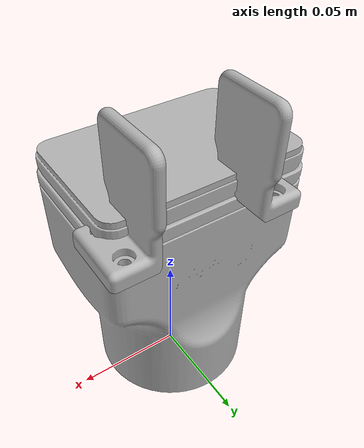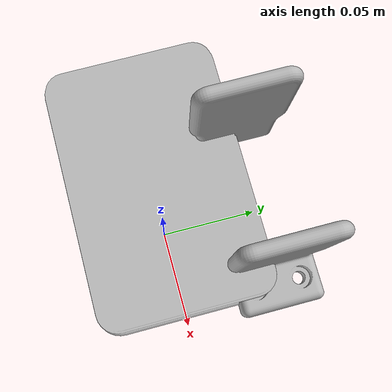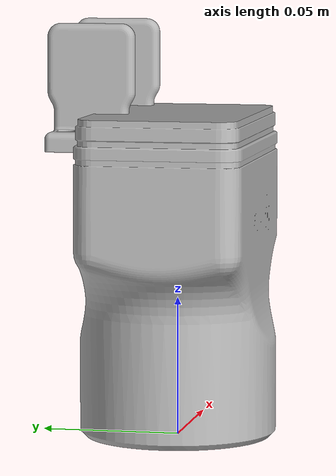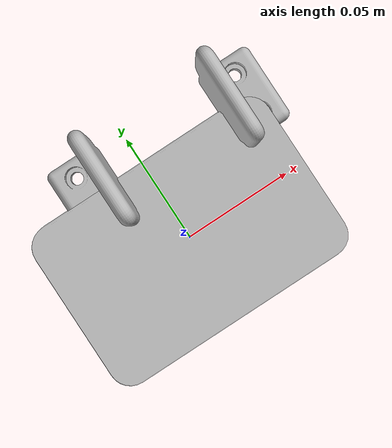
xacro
<?xml version="1.0" ?>
<robot name="2FG7_inwards" xmlns:xacro="http://www.ros.org/wiki/xacro">

<xacro:include filename="$(find 2FG7_inwards_description)/urdf/materials.xacro" />
<xacro:include filename="$(find 2FG7_inwards_description)/urdf/2FG7_inwards.trans" />
<xacro:include filename="$(find 2FG7_inwards_description)/urdf/2FG7_inwards.gazebo" />
<link name="base_link">
  <inertial>
    <origin xyz="0.011012174829169266 0.02949692580937681 0.055310823797750784" rpy="0 0 0"/>
    <mass value="1.2646523179240972"/>
    <inertia ixx="0.001504" iyy="0.001812" izz="0.001053" ixy="-0.0" iyz="0.0" ixz="-3e-06"/>
  </inertial>
  <visual>
    <origin xyz="0 0 0" rpy="0 0 0"/>
    <geometry>
      <mesh filename="package://2FG7_inwards_description/meshes/base_link.stl" scale="0.001 0.001 0.001"/>
    </geometry>
    <material name="silver"/>
  </visual>
  <collision>
    <origin xyz="0 0 0" rpy="0 0 0"/>
    <geometry>
      <mesh filename="package://2FG7_inwards_description/meshes/base_link.stl" scale="0.001 0.001 0.001"/>
    </geometry>
  </collision>
</link>

<link name="right_finger_v1_1">
  <inertial>
    <origin xyz="0.01878686731087252 3.0377198621395207e-06 0.02803421548623221" rpy="0 0 0"/>
    <mass value="0.023219383355922288"/>
    <inertia ixx="6e-06" iyy="5e-06" izz="2e-06" ixy="-0.0" iyz="0.0" ixz="-1e-06"/>
  </inertial>
  <visual>
    <origin xyz="0.032239 -0.029494 -0.09445" rpy="0 0 0"/>
    <geometry>
      <mesh filename="package://2FG7_inwards_description/meshes/right_finger_v1_1.stl" scale="0.001 0.001 0.001"/>
    </geometry>
    <material name="silver"/>
  </visual>
  <collision>
    <origin xyz="0.032239 -0.029494 -0.09445" rpy="0 0 0"/>
    <geometry>
      <mesh filename="package://2FG7_inwards_description/meshes/right_finger_v1_1.stl" scale="0.001 0.001 0.001"/>
    </geometry>
  </collision>
</link>

<link name="left_finger_v1_1">
  <inertial>
    <origin xyz="-0.018786539333398813 -2.881240314580452e-06 0.02803421548623866" rpy="0 0 0"/>
    <mass value="0.023219383355922288"/>
    <inertia ixx="6e-06" iyy="5e-06" izz="2e-06" ixy="-0.0" iyz="-0.0" ixz="1e-06"/>
  </inertial>
  <visual>
    <origin xyz="-0.054361 -0.029494 -0.09445" rpy="0 0 0"/>
    <geometry>
      <mesh filename="package://2FG7_inwards_description/meshes/left_finger_v1_1.stl" scale="0.001 0.001 0.001"/>
    </geometry>
    <material name="silver"/>
  </visual>
  <collision>
    <origin xyz="-0.054361 -0.029494 -0.09445" rpy="0 0 0"/>
    <geometry>
      <mesh filename="package://2FG7_inwards_description/meshes/left_finger_v1_1.stl" scale="0.001 0.001 0.001"/>
    </geometry>
  </collision>
</link>

<joint name="right_finger_joint" type="fixed">
  <origin xyz="-0.032239 0.029494 0.09445" rpy="0 0 0"/>
  <parent link="base_link"/>
  <child link="right_finger_v1_1"/>
</joint>

<joint name="lef_finger_joint" type="prismatic">
  <origin xyz="0.054361 0.029494 0.09445" rpy="0 0 0"/>
  <parent link="base_link"/>
  <child link="left_finger_v1_1"/>
  <axis xyz="-1.0 0.0 -0.0"/>
  <limit upper="0.038" lower="0.0" effort="100" velocity="100"/>
</joint>

</robot>

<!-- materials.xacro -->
<robot name="2FG7_inwards" xmlns:xacro="http://www.ros.org/wiki/xacro" >

<material name="silver">
  <color rgba="0.700 0.700 0.700 1.000"/>
</material>

</robot>

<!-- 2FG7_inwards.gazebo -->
<robot name="2FG7_inwards" xmlns:xacro="http://www.ros.org/wiki/xacro" >

<xacro:property name="body_color" value="Gazebo/Silver" />

<gazebo>
  <plugin name="control" filename="libgazebo_ros_control.so"/>
</gazebo>
<gazebo reference="base_link">
  <material>${body_color}</material>
  <mu1>0.2</mu1>
  <mu2>0.2</mu2>
  <selfCollide>true</selfCollide>
  <gravity>true</gravity>
</gazebo>

<gazebo reference="right_finger_v1_1">
  <material>${body_color}</material>
  <mu1>0.2</mu1>
  <mu2>0.2</mu2>
  <selfCollide>true</selfCollide>
</gazebo>

<gazebo reference="left_finger_v1_1">
  <material>${body_color}</material>
  <mu1>0.2</mu1>
  <mu2>0.2</mu2>
  <selfCollide>true</selfCollide>
</gazebo>

</robot>
